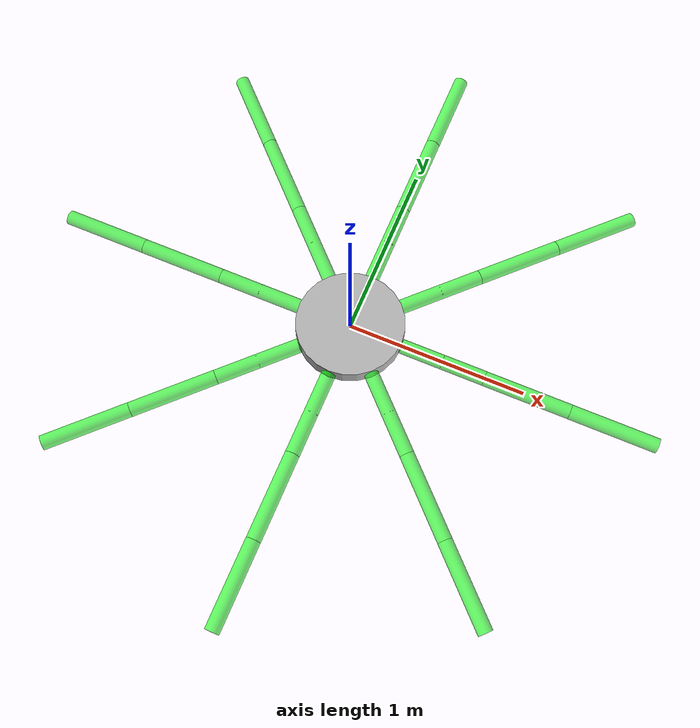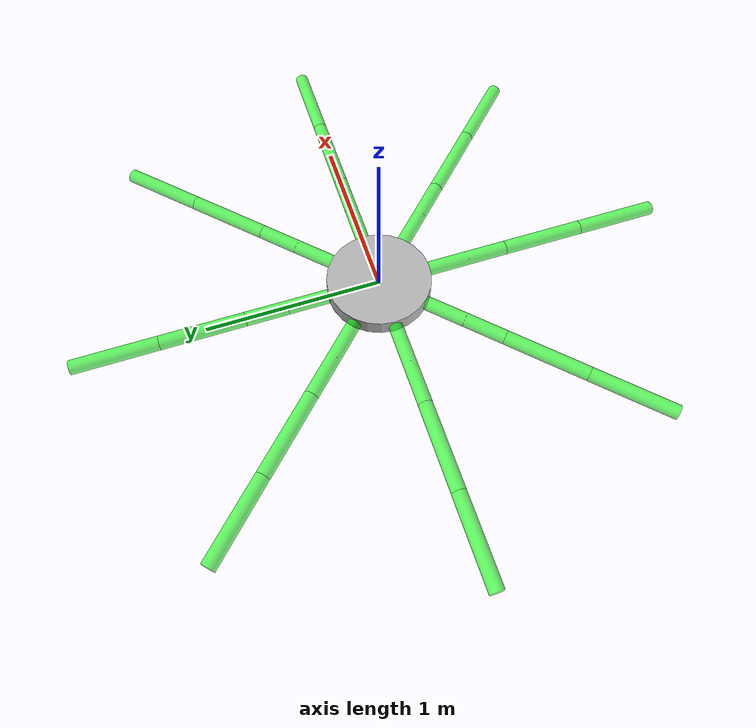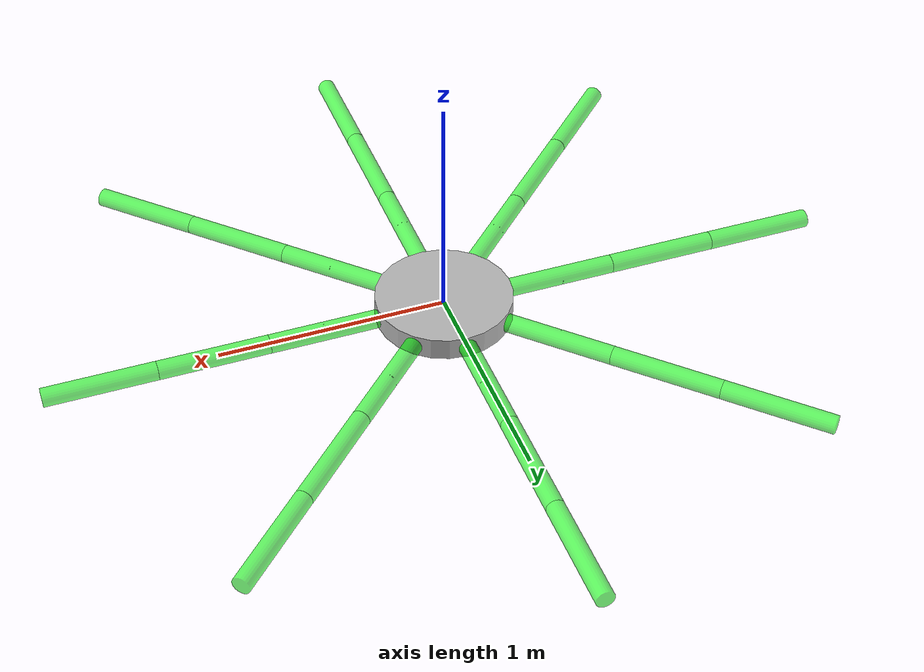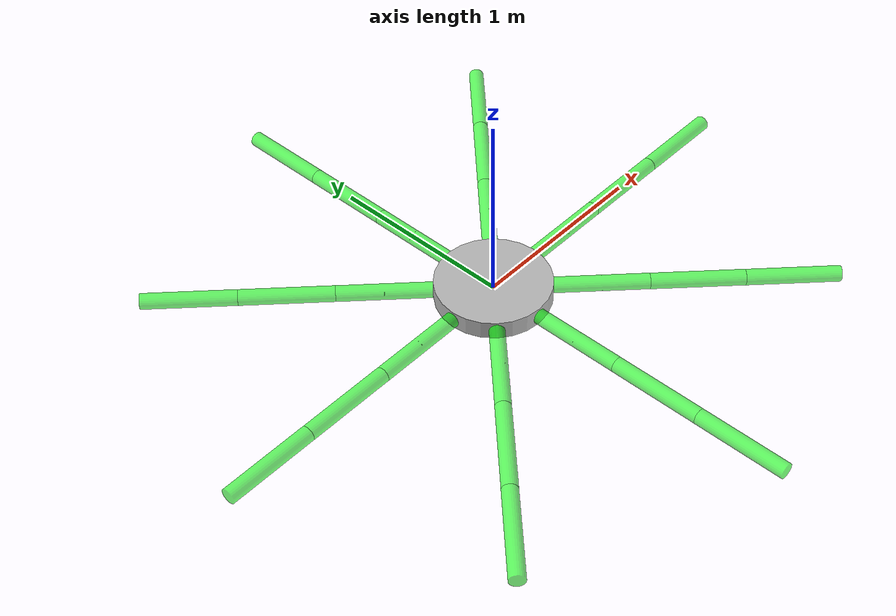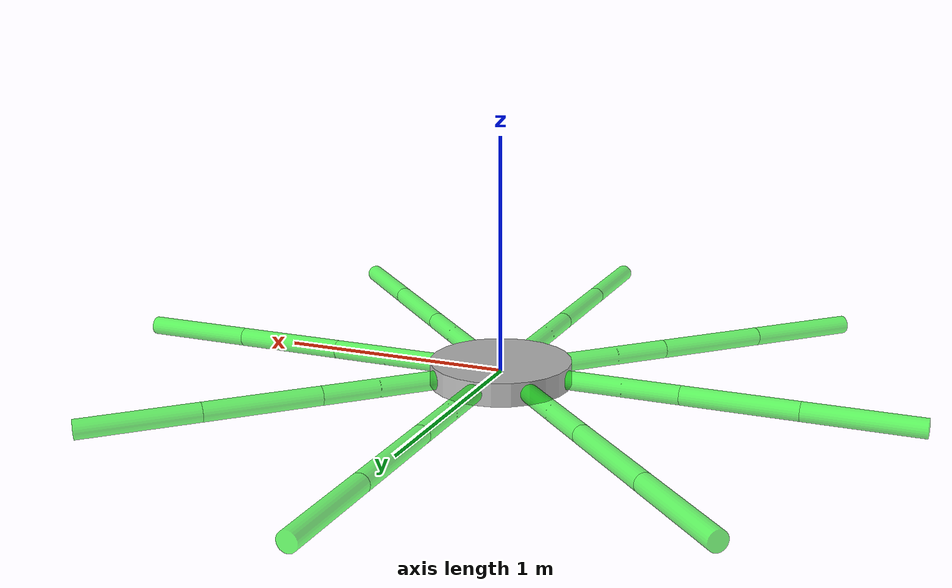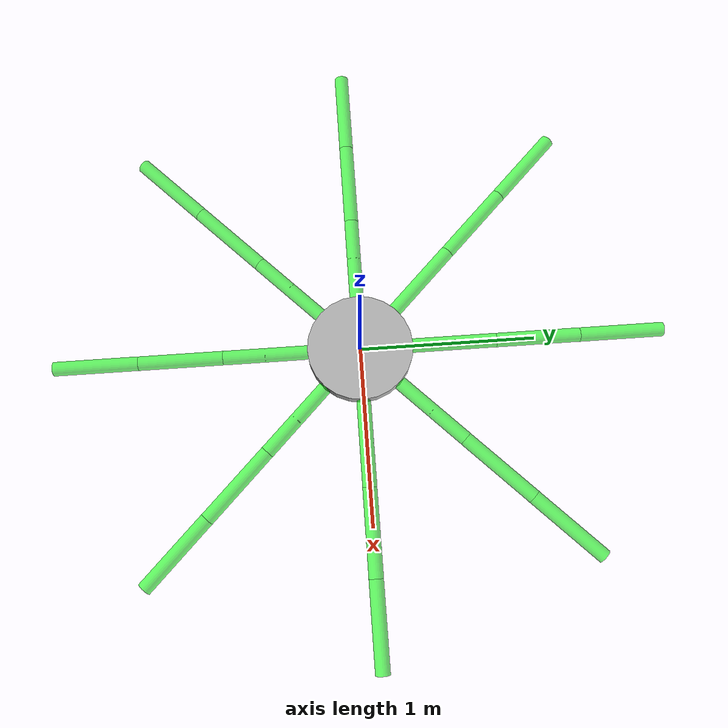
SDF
<?xml version='1.0'?>
<sdf version='1.6'>
<world name='default'>
	<model name="spider">

		<!-- Prevents the robot from falling through the world when visualized in Gazebo. -->
		<joint name="body2world" type="fixed">
			<parent>world</parent>
			<child>body</child>
		</joint>

		<!--TODO: Fix all inertia/mass values!-->

		<!-- Floating base link -->

		<link name="body">
			<pose frame=''>0 0 0 0 0 0</pose>
			<inertial>
				<mass>5</mass>
				<inertia>
					<ixx>5</ixx>
					<ixy>0</ixy>
					<ixz>0</ixz>
					<iyy>5</iyy>
					<iyz>0</iyz>
					<izz>5</izz>
				</inertia>
			</inertial>
			<collision name="body_collision">
				<geometry>
					<cylinder>
						<length>0.1</length>
						<radius>0.3</radius>
					</cylinder>
				</geometry>
			</collision>
			<visual name="body_visual">
				<geometry>
					<cylinder>
						<length>0.1</length>
						<radius>0.3</radius>
					</cylinder>
				</geometry>
			</visual>
		</link>

		<!-- Leg 1 links -->

		<!-- A temporary link, for the temporary solution of testing
		this file using revolute instead of universal joints -->
		<link name="trochanter_1">
			<pose frame=''>0 0 0 0 0 0</pose>
			<inertial>
				<pose frame=''>0 0.54 0 1.57 1.57 0</pose>
				<mass>5</mass>
				<inertia>
					<ixx>5</ixx>
					<ixy>0</ixy>
					<ixz>0</ixz>
					<iyy>5</iyy>
					<iyz>0</iyz>
					<izz>5</izz>
				</inertia>
			</inertial>
			<collision name="trochanter_1_collision">
				<pose frame=''>0 0.54 0 1.57 1.57 0</pose>
				<geometry>
					<cylinder>
						<length>0.001</length>
						<radius>0.04</radius>
					</cylinder>
				</geometry>
			</collision>
			<visual name="trochanter_1_visual">
				<pose frame=''>0 0.54 0 1.57 1.57 0</pose>
				<geometry>
					<cylinder>
						<length>0.001</length>
						<radius>0.04</radius>
					</cylinder>
				</geometry>
				<material>
					<ambient>0 1 0 0.6</ambient>
					<diffuse>0 1 0 0.6</diffuse>
				</material>
			</visual>
		</link>

		<link name="femur_1">
			<pose frame=''>0 0 0 0 0 0</pose>
			<inertial>
				<pose frame=''>0 0.54 0 1.57 1.57 0</pose>
				<mass>5</mass>
				<inertia>
					<ixx>5</ixx>
					<ixy>0</ixy>
					<ixz>0</ixz>
					<iyy>5</iyy>
					<iyz>0</iyz>
					<izz>5</izz>
				</inertia>
			</inertial>
			<collision name="femur_1_collision">
				<pose frame=''>0 0.54 0 1.57 1.57 0</pose>
				<geometry>
					<cylinder>
						<length>0.48</length>
						<radius>0.04</radius>
					</cylinder>
				</geometry>
			</collision>
			<visual name="femur_1_visual">
				<pose frame=''>0 0.54 0 1.57 1.57 0</pose>
				<geometry>
					<cylinder>
						<length>0.48</length>
						<radius>0.04</radius>
					</cylinder>
				</geometry>
				<material>
					<ambient>0 1 0 0.6</ambient>
					<diffuse>0 1 0 0.6</diffuse>
				</material>
			</visual>
		</link>

		<link name="tibia_1">
			<pose frame=''>0 0 0 0 0 0</pose>
			<inertial>
				<pose frame=''>0 1.02 0 1.57 1.57 0</pose>
				<mass>5</mass>
				<inertia>
					<ixx>5</ixx>
					<ixy>0</ixy>
					<ixz>0</ixz>
					<iyy>5</iyy>
					<iyz>0</iyz>
					<izz>5</izz>
				</inertia>
			</inertial>
			<collision name="tibia_1_collision">
				<pose frame=''>0 1.02 0 1.57 1.57 0</pose>
				<geometry>
					<cylinder>
						<length>0.48</length>
						<radius>0.04</radius>
					</cylinder>
				</geometry>
			</collision>
			<visual name="tibia_1_visual">
				<pose frame=''>0 1.02 0 1.57 1.57 0</pose>
				<geometry>
					<cylinder>
						<length>0.48</length>
						<radius>0.04</radius>
					</cylinder>
				</geometry>
				<material>
					<ambient>0 1 0 0.6</ambient>
					<diffuse>0 1 0 0.6</diffuse>
				</material>
			</visual>
		</link>

		<link name="tarsus_1_L1">
			<pose frame=''>0 0 0 0 0 0</pose>
			<inertial>
				<pose frame=''>0 1.5 0 1.57 1.57 0</pose>
				<mass>5</mass>
				<inertia>
					<ixx>5</ixx>
					<ixy>0</ixy>
					<ixz>0</ixz>
					<iyy>5</iyy>
					<iyz>0</iyz>
					<izz>5</izz>
				</inertia>
			</inertial>
			<collision name="tarsus_1_collision">
				<pose frame=''>0 1.5 0 1.57 1.57 0</pose>
				<geometry>
					<cylinder>
						<length>0.48</length>
						<radius>0.04</radius>
					</cylinder>
				</geometry>
			</collision>
			<visual name="tarsus_1_visual">
				<pose frame=''>0 1.5 0 1.57 1.57 0</pose>
				<geometry>
					<cylinder>
						<length>0.48</length>
						<radius>0.04</radius>
					</cylinder>
				</geometry>
				<material>
					<ambient>0 1 0 0.6</ambient>
					<diffuse>0 1 0 0.6</diffuse>
				</material>
			</visual>
		</link>

		<!-- Leg 1 joints -->

		<joint name="hip_1" type="revolute">
			<parent>body</parent>
			<child>trochanter_1</child>
			<pose frame=''>0 0.3 0 0 0 0</pose>
			<axis>
				<xyz>1 0 0</xyz>
				<limit>
					<lower>-0.9162979</lower>
					<upper>0.9162979</upper>
				</limit>
				<use_parent_model_frame>0</use_parent_model_frame>
			</axis>
		</joint>
		<joint name="hip2_1" type="revolute">
			<parent>trochanter_1</parent>
			<child>femur_1</child>
			<pose frame=''>0 0.3001 0 0 0 0</pose>
			<axis>
				<xyz>0 0 1</xyz>
				<limit>
					<lower>-0.610865</lower>
					<upper>0.610865</upper>
				</limit>
				<use_parent_model_frame>0</use_parent_model_frame>
			</axis>
		</joint>

		<joint name="knee_1" type="revolute">
			<parent>femur_1</parent>
			<child>tibia_1</child>
			<pose frame=''>0 0.78001 0 0 0 0</pose>
			<axis>
				<xyz>1 0 0</xyz>
				<limit>
					<lower>-0.349066</lower>
					<upper>2.44346</upper>
				</limit>
			</axis>
		</joint>

		<joint name="ankle_1" type="revolute">
			<parent>tibia_1</parent>
			<child>tarsus_1_L1</child>
			<pose frame=''>0 1.26001 0 0 0 0</pose>
			<axis>
				<xyz>1 0 0</xyz>
				<limit>
					<lower>-1.090831</lower>
					<upper>1.090831</upper>
				</limit>
			</axis>
		</joint>

		<!-- Leg 2 links -->

		<!-- A temporary link, for the temporary solution of testing
		this file using revolute instead of universal joints -->
		<link name="trochanter_2">
			<pose frame=''>0 0 0 0 0 0.785398</pose>
			<inertial>
				<pose frame=''>0 0.54 0 1.57 1.57 0</pose>
				<mass>5</mass>
				<inertia>
					<ixx>5</ixx>
					<ixy>0</ixy>
					<ixz>0</ixz>
					<iyy>5</iyy>
					<iyz>0</iyz>
					<izz>5</izz>
				</inertia>
			</inertial>
			<collision name="trochanter_2_collision">
				<pose frame=''>0 0.54 0 1.57 1.57 0</pose>
				<geometry>
					<cylinder>
						<length>0.001</length>
						<radius>0.04</radius>
					</cylinder>
				</geometry>
			</collision>
			<visual name="trochanter_2_visual">
				<pose frame=''>0 0.54 0 1.57 1.57 0</pose>
				<geometry>
					<cylinder>
						<length>0.001</length>
						<radius>0.04</radius>
					</cylinder>
				</geometry>
				<material>
					<ambient>0 1 0 0.6</ambient>
					<diffuse>0 1 0 0.6</diffuse>
				</material>
			</visual>
		</link>

		<link name="femur_2">
			<pose frame=''>0 0 0 0 0 0.785398</pose>
			<inertial>
				<pose frame=''>0 0.54 0 1.57 1.57 0</pose>
				<mass>5</mass>
				<inertia>
					<ixx>5</ixx>
					<ixy>0</ixy>
					<ixz>0</ixz>
					<iyy>5</iyy>
					<iyz>0</iyz>
					<izz>5</izz>
				</inertia>
			</inertial>
			<collision name="femur_2_collision">
				<pose frame=''>0 0.54 0 1.57 1.57 0</pose>
				<geometry>
					<cylinder>
						<length>0.48</length>
						<radius>0.04</radius>
					</cylinder>
				</geometry>
			</collision>
			<visual name="femur_2_visual">
				<pose frame=''>0 0.54 0 1.57 1.57 0</pose>
				<geometry>
					<cylinder>
						<length>0.48</length>
						<radius>0.04</radius>
					</cylinder>
				</geometry>
				<material>
					<ambient>0 1 0 0.6</ambient>
					<diffuse>0 1 0 0.6</diffuse>
				</material>
			</visual>
		</link>

		<link name="tibia_2">
			<pose frame=''>0 0 0 0 0 0.785398</pose>
			<inertial>
				<pose frame=''>0 1.02 0 1.57 1.57 0</pose>
				<mass>5</mass>
				<inertia>
					<ixx>5</ixx>
					<ixy>0</ixy>
					<ixz>0</ixz>
					<iyy>5</iyy>
					<iyz>0</iyz>
					<izz>5</izz>
				</inertia>
			</inertial>
			<collision name="tibia_2_collision">
				<pose frame=''>0 1.02 0 1.57 1.57 0</pose>
				<geometry>
					<cylinder>
						<length>0.48</length>
						<radius>0.04</radius>
					</cylinder>
				</geometry>
			</collision>
			<visual name="tibia_2_visual">
				<pose frame=''>0 1.02 0 1.57 1.57 0</pose>
				<geometry>
					<cylinder>
						<length>0.48</length>
						<radius>0.04</radius>
					</cylinder>
				</geometry>
				<material>
					<ambient>0 1 0 0.6</ambient>
					<diffuse>0 1 0 0.6</diffuse>
				</material>
			</visual>
		</link>

		<link name="tarsus_2_L2">
			<pose frame=''>0 0 0 0 0 0.785398</pose>
			<inertial>
				<pose frame=''>0 1.5 0 1.57 1.57 0</pose>
				<mass>5</mass>
				<inertia>
					<ixx>5</ixx>
					<ixy>0</ixy>
					<ixz>0</ixz>
					<iyy>5</iyy>
					<iyz>0</iyz>
					<izz>5</izz>
				</inertia>
			</inertial>
			<collision name="tarsus_2_collision">
				<pose frame=''>0 1.5 0 1.57 1.57 0</pose>
				<geometry>
					<cylinder>
						<length>0.48</length>
						<radius>0.04</radius>
					</cylinder>
				</geometry>
			</collision>
			<visual name="tarsus_2_visual">
				<pose frame=''>0 1.5 0 1.57 1.57 0</pose>
				<geometry>
					<cylinder>
						<length>0.48</length>
						<radius>0.04</radius>
					</cylinder>
				</geometry>
				<material>
					<ambient>0 1 0 0.6</ambient>
					<diffuse>0 1 0 0.6</diffuse>
				</material>
			</visual>
		</link>

		<!-- Leg 2 joints -->

		<joint name="hip_2" type="revolute">
			<parent>body</parent>
			<child>trochanter_2</child>
			<pose frame=''>0 0.3 0 0 0 0</pose>
			<axis>
				<xyz>1 0 0</xyz>
				<limit>
					<lower>-0.9162979</lower>
					<upper>0.9162979</upper>
				</limit>
				<use_parent_model_frame>0</use_parent_model_frame>
			</axis>
		</joint>
		<joint name="hip2_2" type="revolute">
			<parent>trochanter_2</parent>
			<child>femur_2</child>
			<pose frame=''>0 0.3001 0 0 0 0</pose>
			<axis>
				<xyz>0 0 1</xyz>
				<limit>
					<lower>-0.610865</lower>
					<upper>0.610865</upper>
				</limit>
				<use_parent_model_frame>0</use_parent_model_frame>
			</axis>
		</joint>

		<joint name="knee_2" type="revolute">
			<parent>femur_2</parent>
			<child>tibia_2</child>
			<pose frame=''>0 0.78001 0 0 0 0</pose>
			<axis>
				<xyz>1 0 0</xyz>
				<limit>
					<lower>-0.349066</lower>
					<upper>2.44346</upper>
				</limit>
			</axis>
		</joint>

		<joint name="ankle_2" type="revolute">
			<parent>tibia_2</parent>
			<child>tarsus_2_L2</child>
			<pose frame=''>0 1.26001 0 0 0 0</pose>
			<axis>
				<xyz>1 0 0</xyz>
				<limit>
					<lower>-1.090831</lower>
					<upper>1.090831</upper>
				</limit>
			</axis>
		</joint>

		<!-- Leg 3 links -->

		<!-- A temporary link, for the temporary solution of testing
		this file using revolute instead of universal joints -->
		<link name="trochanter_3">
			<pose frame=''>0 0 0 0 0 1.570796</pose>
			<inertial>
				<pose frame=''>0 0.54 0 1.57 1.57 0</pose>
				<mass>5</mass>
				<inertia>
					<ixx>5</ixx>
					<ixy>0</ixy>
					<ixz>0</ixz>
					<iyy>5</iyy>
					<iyz>0</iyz>
					<izz>5</izz>
				</inertia>
			</inertial>
			<collision name="trochanter_3_collision">
				<pose frame=''>0 0.54 0 1.57 1.57 0</pose>
				<geometry>
					<cylinder>
						<length>0.001</length>
						<radius>0.04</radius>
					</cylinder>
				</geometry>
			</collision>
			<visual name="trochanter_3_visual">
				<pose frame=''>0 0.54 0 1.57 1.57 0</pose>
				<geometry>
					<cylinder>
						<length>0.001</length>
						<radius>0.04</radius>
					</cylinder>
				</geometry>
				<material>
					<ambient>0 1 0 0.6</ambient>
					<diffuse>0 1 0 0.6</diffuse>
				</material>
			</visual>
		</link>

		<link name="femur_3">
			<pose frame=''>0 0 0 0 0 1.570796</pose>
			<inertial>
				<pose frame=''>0 0.54 0 1.57 1.57 0</pose>
				<mass>5</mass>
				<inertia>
					<ixx>5</ixx>
					<ixy>0</ixy>
					<ixz>0</ixz>
					<iyy>5</iyy>
					<iyz>0</iyz>
					<izz>5</izz>
				</inertia>
			</inertial>
			<collision name="femur_3_collision">
				<pose frame=''>0 0.54 0 1.57 1.57 0</pose>
				<geometry>
					<cylinder>
						<length>0.48</length>
						<radius>0.04</radius>
					</cylinder>
				</geometry>
			</collision>
			<visual name="femur_3_visual">
				<pose frame=''>0 0.54 0 1.57 1.57 0</pose>
				<geometry>
					<cylinder>
						<length>0.48</length>
						<radius>0.04</radius>
					</cylinder>
				</geometry>
				<material>
					<ambient>0 1 0 0.6</ambient>
					<diffuse>0 1 0 0.6</diffuse>
				</material>
			</visual>
		</link>

		<link name="tibia_3">
			<pose frame=''>0 0 0 0 0 1.570796</pose>
			<inertial>
				<pose frame=''>0 1.02 0 1.57 1.57 0</pose>
				<mass>5</mass>
				<inertia>
					<ixx>5</ixx>
					<ixy>0</ixy>
					<ixz>0</ixz>
					<iyy>5</iyy>
					<iyz>0</iyz>
					<izz>5</izz>
				</inertia>
			</inertial>
			<collision name="tibia_3_collision">
				<pose frame=''>0 1.02 0 1.57 1.57 0</pose>
				<geometry>
					<cylinder>
						<length>0.48</length>
						<radius>0.04</radius>
					</cylinder>
				</geometry>
			</collision>
			<visual name="tibia_3_visual">
				<pose frame=''>0 1.02 0 1.57 1.57 0</pose>
				<geometry>
					<cylinder>
						<length>0.48</length>
						<radius>0.04</radius>
					</cylinder>
				</geometry>
				<material>
					<ambient>0 1 0 0.6</ambient>
					<diffuse>0 1 0 0.6</diffuse>
				</material>
			</visual>
		</link>

		<link name="tarsus_3_L3">
			<pose frame=''>0 0 0 0 0 1.570796</pose>
			<inertial>
				<pose frame=''>0 1.5 0 1.57 1.57 0</pose>
				<mass>5</mass>
				<inertia>
					<ixx>5</ixx>
					<ixy>0</ixy>
					<ixz>0</ixz>
					<iyy>5</iyy>
					<iyz>0</iyz>
					<izz>5</izz>
				</inertia>
			</inertial>
			<collision name="tarsus_3_collision">
				<pose frame=''>0 1.5 0 1.57 1.57 0</pose>
				<geometry>
					<cylinder>
						<length>0.48</length>
						<radius>0.04</radius>
					</cylinder>
				</geometry>
			</collision>
			<visual name="tarsus_3_visual">
				<pose frame=''>0 1.5 0 1.57 1.57 0</pose>
				<geometry>
					<cylinder>
						<length>0.48</length>
						<radius>0.04</radius>
					</cylinder>
				</geometry>
				<material>
					<ambient>0 1 0 0.6</ambient>
					<diffuse>0 1 0 0.6</diffuse>
				</material>
			</visual>
		</link>

		<!-- Leg 3 joints -->

		<joint name="hip_3" type="revolute">
			<parent>body</parent>
			<child>trochanter_3</child>
			<pose frame=''>0 0.3 0 0 0 0</pose>
			<axis>
				<xyz>1 0 0</xyz>
				<limit>
					<lower>-0.9162979</lower>
					<upper>0.9162979</upper>
				</limit>
				<use_parent_model_frame>0</use_parent_model_frame>
			</axis>
		</joint>
		<joint name="hip2_3" type="revolute">
			<parent>trochanter_3</parent>
			<child>femur_3</child>
			<pose frame=''>0 0.3001 0 0 0 0</pose>
			<axis>
				<xyz>0 0 1</xyz>
				<limit>
					<lower>-0.610865</lower>
					<upper>0.610865</upper>
				</limit>
				<use_parent_model_frame>0</use_parent_model_frame>
			</axis>
		</joint>

		<joint name="knee_3" type="revolute">
			<parent>femur_3</parent>
			<child>tibia_3</child>
			<pose frame=''>0 0.78001 0 0 0 0</pose>
			<axis>
				<xyz>1 0 0</xyz>
				<limit>
					<lower>-0.349066</lower>
					<upper>2.44346</upper>
				</limit>
			</axis>
		</joint>

		<joint name="ankle_3" type="revolute">
			<parent>tibia_3</parent>
			<child>tarsus_3_L3</child>
			<pose frame=''>0 1.26001 0 0 0 0</pose>
			<axis>
				<xyz>1 0 0</xyz>
				<limit>
					<lower>-1.090831</lower>
					<upper>1.090831</upper>
				</limit>
			</axis>
		</joint>

		<!-- Leg 4 links -->

		<!-- A temporary link, for the temporary solution of testing
		this file using revolute instead of universal joints -->
		<link name="trochanter_4">
			<pose frame=''>0 0 0 0 0 2.356194</pose>
			<inertial>
				<pose frame=''>0 0.54 0 1.57 1.57 0</pose>
				<mass>5</mass>
				<inertia>
					<ixx>5</ixx>
					<ixy>0</ixy>
					<ixz>0</ixz>
					<iyy>5</iyy>
					<iyz>0</iyz>
					<izz>5</izz>
				</inertia>
			</inertial>
			<collision name="trochanter_4_collision">
				<pose frame=''>0 0.54 0 1.57 1.57 0</pose>
				<geometry>
					<cylinder>
						<length>0.001</length>
						<radius>0.04</radius>
					</cylinder>
				</geometry>
			</collision>
			<visual name="trochanter_4_visual">
				<pose frame=''>0 0.54 0 1.57 1.57 0</pose>
				<geometry>
					<cylinder>
						<length>0.001</length>
						<radius>0.04</radius>
					</cylinder>
				</geometry>
				<material>
					<ambient>0 1 0 0.6</ambient>
					<diffuse>0 1 0 0.6</diffuse>
				</material>
			</visual>
		</link>

		<link name="femur_4">
			<pose frame=''>0 0 0 0 0 2.356194</pose>
			<inertial>
				<pose frame=''>0 0.54 0 1.57 1.57 0</pose>
				<mass>5</mass>
				<inertia>
					<ixx>5</ixx>
					<ixy>0</ixy>
					<ixz>0</ixz>
					<iyy>5</iyy>
					<iyz>0</iyz>
					<izz>5</izz>
				</inertia>
			</inertial>
			<collision name="femur_4_collision">
				<pose frame=''>0 0.54 0 1.57 1.57 0</pose>
				<geometry>
					<cylinder>
						<length>0.48</length>
						<radius>0.04</radius>
					</cylinder>
				</geometry>
			</collision>
			<visual name="femur_4_visual">
				<pose frame=''>0 0.54 0 1.57 1.57 0</pose>
				<geometry>
					<cylinder>
						<length>0.48</length>
						<radius>0.04</radius>
					</cylinder>
				</geometry>
				<material>
					<ambient>0 1 0 0.6</ambient>
					<diffuse>0 1 0 0.6</diffuse>
				</material>
			</visual>
		</link>

		<link name="tibia_4">
			<pose frame=''>0 0 0 0 0 2.356194</pose>
			<inertial>
				<pose frame=''>0 1.02 0 1.57 1.57 0</pose>
				<mass>5</mass>
				<inertia>
					<ixx>5</ixx>
					<ixy>0</ixy>
					<ixz>0</ixz>
					<iyy>5</iyy>
					<iyz>0</iyz>
					<izz>5</izz>
				</inertia>
			</inertial>
			<collision name="tibia_4_collision">
				<pose frame=''>0 1.02 0 1.57 1.57 0</pose>
				<geometry>
					<cylinder>
						<length>0.48</length>
						<radius>0.04</radius>
					</cylinder>
				</geometry>
			</collision>
			<visual name="tibia_4_visual">
				<pose frame=''>0 1.02 0 1.57 1.57 0</pose>
				<geometry>
					<cylinder>
						<length>0.48</length>
						<radius>0.04</radius>
					</cylinder>
				</geometry>
				<material>
					<ambient>0 1 0 0.6</ambient>
					<diffuse>0 1 0 0.6</diffuse>
				</material>
			</visual>
		</link>

		<link name="tarsus_4_L4">
			<pose frame=''>0 0 0 0 0 2.356194</pose>
			<inertial>
				<pose frame=''>0 1.5 0 1.57 1.57 0</pose>
				<mass>5</mass>
				<inertia>
					<ixx>5</ixx>
					<ixy>0</ixy>
					<ixz>0</ixz>
					<iyy>5</iyy>
					<iyz>0</iyz>
					<izz>5</izz>
				</inertia>
			</inertial>
			<collision name="tarsus_4_collision">
				<pose frame=''>0 1.5 0 1.57 1.57 0</pose>
				<geometry>
					<cylinder>
						<length>0.48</length>
						<radius>0.04</radius>
					</cylinder>
				</geometry>
			</collision>
			<visual name="tarsus_4_visual">
				<pose frame=''>0 1.5 0 1.57 1.57 0</pose>
				<geometry>
					<cylinder>
						<length>0.48</length>
						<radius>0.04</radius>
					</cylinder>
				</geometry>
				<material>
					<ambient>0 1 0 0.6</ambient>
					<diffuse>0 1 0 0.6</diffuse>
				</material>
			</visual>
		</link>

		<!-- Leg 4 joints -->

		<joint name="hip_4" type="revolute">
			<parent>body</parent>
			<child>trochanter_4</child>
			<pose frame=''>0 0.3 0 0 0 0</pose>
			<axis>
				<xyz>1 0 0</xyz>
				<limit>
					<lower>-0.9162979</lower>
					<upper>0.9162979</upper>
				</limit>
				<use_parent_model_frame>0</use_parent_model_frame>
			</axis>
		</joint>
		<joint name="hip2_4" type="revolute">
			<parent>trochanter_4</parent>
			<child>femur_4</child>
			<pose frame=''>0 0.3001 0 0 0 0</pose>
			<axis>
				<xyz>0 0 1</xyz>
				<limit>
					<lower>-0.610865</lower>
					<upper>0.610865</upper>
				</limit>
				<use_parent_model_frame>0</use_parent_model_frame>
			</axis>
		</joint>

		<joint name="knee_4" type="revolute">
			<parent>femur_4</parent>
			<child>tibia_4</child>
			<pose frame=''>0 0.78001 0 0 0 0</pose>
			<axis>
				<xyz>1 0 0</xyz>
				<limit>
					<lower>-0.349066</lower>
					<upper>2.44346</upper>
				</limit>
			</axis>
		</joint>

		<joint name="ankle_4" type="revolute">
			<parent>tibia_4</parent>
			<child>tarsus_4_L4</child>
			<pose frame=''>0 1.26001 0 0 0 0</pose>
			<axis>
				<xyz>1 0 0</xyz>
				<limit>
					<lower>-1.090831</lower>
					<upper>1.090831</upper>
				</limit>
			</axis>
		</joint>

		<!-- Leg 5 links -->

		<!-- A temporary link, for the temporary solution of testing
		this file using revolute instead of universal joints -->
		<link name="trochanter_5">
			<pose frame=''>0 0 0 0 0 3.141592</pose>
			<inertial>
				<pose frame=''>0 0.54 0 1.57 1.57 0</pose>
				<mass>5</mass>
				<inertia>
					<ixx>5</ixx>
					<ixy>0</ixy>
					<ixz>0</ixz>
					<iyy>5</iyy>
					<iyz>0</iyz>
					<izz>5</izz>
				</inertia>
			</inertial>
			<collision name="trochanter_5_collision">
				<pose frame=''>0 0.54 0 1.57 1.57 0</pose>
				<geometry>
					<cylinder>
						<length>0.001</length>
						<radius>0.04</radius>
					</cylinder>
				</geometry>
			</collision>
			<visual name="trochanter_5_visual">
				<pose frame=''>0 0.54 0 1.57 1.57 0</pose>
				<geometry>
					<cylinder>
						<length>0.001</length>
						<radius>0.04</radius>
					</cylinder>
				</geometry>
				<material>
					<ambient>0 1 0 0.6</ambient>
					<diffuse>0 1 0 0.6</diffuse>
				</material>
			</visual>
		</link>

		<link name="femur_5">
			<pose frame=''>0 0 0 0 0 3.141592</pose>
			<inertial>
				<pose frame=''>0 0.54 0 1.57 1.57 0</pose>
				<mass>5</mass>
				<inertia>
					<ixx>5</ixx>
					<ixy>0</ixy>
					<ixz>0</ixz>
					<iyy>5</iyy>
					<iyz>0</iyz>
					<izz>5</izz>
				</inertia>
			</inertial>
			<collision name="femur_5_collision">
				<pose frame=''>0 0.54 0 1.57 1.57 0</pose>
				<geometry>
					<cylinder>
						<length>0.48</length>
						<radius>0.04</radius>
					</cylinder>
				</geometry>
			</collision>
			<visual name="femur_5_visual">
				<pose frame=''>0 0.54 0 1.57 1.57 0</pose>
				<geometry>
					<cylinder>
						<length>0.48</length>
						<radius>0.04</radius>
					</cylinder>
				</geometry>
				<material>
					<ambient>0 1 0 0.6</ambient>
					<diffuse>0 1 0 0.6</diffuse>
				</material>
			</visual>
		</link>

		<link name="tibia_5">
			<pose frame=''>0 0 0 0 0 3.141592</pose>
			<inertial>
				<pose frame=''>0 1.02 0 1.57 1.57 0</pose>
				<mass>5</mass>
				<inertia>
					<ixx>5</ixx>
					<ixy>0</ixy>
					<ixz>0</ixz>
					<iyy>5</iyy>
					<iyz>0</iyz>
					<izz>5</izz>
				</inertia>
			</inertial>
			<collision name="tibia_5_collision">
				<pose frame=''>0 1.02 0 1.57 1.57 0</pose>
				<geometry>
					<cylinder>
						<length>0.48</length>
						<radius>0.04</radius>
					</cylinder>
				</geometry>
			</collision>
			<visual name="tibia_5_visual">
				<pose frame=''>0 1.02 0 1.57 1.57 0</pose>
				<geometry>
					<cylinder>
						<length>0.48</length>
						<radius>0.04</radius>
					</cylinder>
				</geometry>
				<material>
					<ambient>0 1 0 0.6</ambient>
					<diffuse>0 1 0 0.6</diffuse>
				</material>
			</visual>
		</link>

		<link name="tarsus_5_R4">
			<pose frame=''>0 0 0 0 0 3.141592</pose>
			<inertial>
				<pose frame=''>0 1.5 0 1.57 1.57 0</pose>
				<mass>5</mass>
				<inertia>
					<ixx>5</ixx>
					<ixy>0</ixy>
					<ixz>0</ixz>
					<iyy>5</iyy>
					<iyz>0</iyz>
					<izz>5</izz>
				</inertia>
			</inertial>
			<collision name="tarsus_5_collision">
				<pose frame=''>0 1.5 0 1.57 1.57 0</pose>
				<geometry>
					<cylinder>
						<length>0.48</length>
						<radius>0.04</radius>
					</cylinder>
				</geometry>
			</collision>
			<visual name="tarsus_5_visual">
				<pose frame=''>0 1.5 0 1.57 1.57 0</pose>
				<geometry>
					<cylinder>
						<length>0.48</length>
						<radius>0.04</radius>
					</cylinder>
				</geometry>
				<material>
					<ambient>0 1 0 0.6</ambient>
					<diffuse>0 1 0 0.6</diffuse>
				</material>
			</visual>
		</link>

		<!-- Leg 5 joints -->

		<joint name="hip_5" type="revolute">
			<parent>body</parent>
			<child>trochanter_5</child>
			<pose frame=''>0 0.3 0 0 0 0</pose>
			<axis>
				<xyz>1 0 0</xyz>
				<limit>
					<lower>-0.9162979</lower>
					<upper>0.9162979</upper>
				</limit>
				<use_parent_model_frame>0</use_parent_model_frame>
			</axis>
		</joint>
		<joint name="hip2_5" type="revolute">
			<parent>trochanter_5</parent>
			<child>femur_5</child>
			<pose frame=''>0 0.3001 0 0 0 0</pose>
			<axis>
				<xyz>0 0 1</xyz>
				<limit>
					<lower>-0.610865</lower>
					<upper>0.610865</upper>
				</limit>
				<use_parent_model_frame>0</use_parent_model_frame>
			</axis>
		</joint>

		<joint name="knee_5" type="revolute">
			<parent>femur_5</parent>
			<child>tibia_5</child>
			<pose frame=''>0 0.78001 0 0 0 0</pose>
			<axis>
				<xyz>1 0 0</xyz>
				<limit>
					<lower>-0.349066</lower>
					<upper>2.44346</upper>
				</limit>
			</axis>
		</joint>

		<joint name="ankle_5" type="revolute">
			<parent>tibia_5</parent>
			<child>tarsus_5_R4</child>
			<pose frame=''>0 1.26001 0 0 0 0</pose>
			<axis>
				<xyz>1 0 0</xyz>
				<limit>
					<lower>-1.090831</lower>
					<upper>1.090831</upper>
				</limit>
			</axis>
		</joint>

		<!-- Leg 6 links -->

		<!-- A temporary link, for the temporary solution of testing
		this file using revolute instead of universal joints -->
		<link name="trochanter_6">
			<pose frame=''>0 0 0 0 0 3.92699</pose>
			<inertial>
				<pose frame=''>0 0.54 0 1.57 1.57 0</pose>
				<mass>5</mass>
				<inertia>
					<ixx>5</ixx>
					<ixy>0</ixy>
					<ixz>0</ixz>
					<iyy>5</iyy>
					<iyz>0</iyz>
					<izz>5</izz>
				</inertia>
			</inertial>
			<collision name="trochanter_6_collision">
				<pose frame=''>0 0.54 0 1.57 1.57 0</pose>
				<geometry>
					<cylinder>
						<length>0.001</length>
						<radius>0.04</radius>
					</cylinder>
				</geometry>
			</collision>
			<visual name="trochanter_6_visual">
				<pose frame=''>0 0.54 0 1.57 1.57 0</pose>
				<geometry>
					<cylinder>
						<length>0.001</length>
						<radius>0.04</radius>
					</cylinder>
				</geometry>
				<material>
					<ambient>0 1 0 0.6</ambient>
					<diffuse>0 1 0 0.6</diffuse>
				</material>
			</visual>
		</link>

		<link name="femur_6">
			<pose frame=''>0 0 0 0 0 3.92699</pose>
			<inertial>
				<pose frame=''>0 0.54 0 1.57 1.57 0</pose>
				<mass>5</mass>
				<inertia>
					<ixx>5</ixx>
					<ixy>0</ixy>
					<ixz>0</ixz>
					<iyy>5</iyy>
					<iyz>0</iyz>
					<izz>5</izz>
				</inertia>
			</inertial>
			<collision name="femur_6_collision">
				<pose frame=''>0 0.54 0 1.57 1.57 0</pose>
				<geometry>
					<cylinder>
						<length>0.48</length>
						<radius>0.04</radius>
					</cylinder>
				</geometry>
			</collision>
			<visual name="femur_6_visual">
				<pose frame=''>0 0.54 0 1.57 1.57 0</pose>
				<geometry>
					<cylinder>
						<length>0.48</length>
						<radius>0.04</radius>
					</cylinder>
				</geometry>
				<material>
					<ambient>0 1 0 0.6</ambient>
					<diffuse>0 1 0 0.6</diffuse>
				</material>
			</visual>
		</link>

		<link name="tibia_6">
			<pose frame=''>0 0 0 0 0 3.92699</pose>
			<inertial>
				<pose frame=''>0 1.02 0 1.57 1.57 0</pose>
				<mass>5</mass>
				<inertia>
					<ixx>5</ixx>
					<ixy>0</ixy>
					<ixz>0</ixz>
					<iyy>5</iyy>
					<iyz>0</iyz>
					<izz>5</izz>
				</inertia>
			</inertial>
			<collision name="tibia_6_collision">
				<pose frame=''>0 1.02 0 1.57 1.57 0</pose>
				<geometry>
					<cylinder>
						<length>0.48</length>
						<radius>0.04</radius>
					</cylinder>
				</geometry>
			</collision>
			<visual name="tibia_6_visual">
				<pose frame=''>0 1.02 0 1.57 1.57 0</pose>
				<geometry>
					<cylinder>
						<length>0.48</length>
						<radius>0.04</radius>
					</cylinder>
				</geometry>
				<material>
					<ambient>0 1 0 0.6</ambient>
					<diffuse>0 1 0 0.6</diffuse>
				</material>
			</visual>
		</link>

		<link name="tarsus_6_R3">
			<pose frame=''>0 0 0 0 0 3.92699</pose>
			<inertial>
				<pose frame=''>0 1.5 0 1.57 1.57 0</pose>
				<mass>5</mass>
				<inertia>
					<ixx>5</ixx>
					<ixy>0</ixy>
					<ixz>0</ixz>
					<iyy>5</iyy>
					<iyz>0</iyz>
					<izz>5</izz>
				</inertia>
			</inertial>
			<collision name="tarsus_6_collision">
				<pose frame=''>0 1.5 0 1.57 1.57 0</pose>
				<geometry>
					<cylinder>
						<length>0.48</length>
						<radius>0.04</radius>
					</cylinder>
				</geometry>
			</collision>
			<visual name="tarsus_6_visual">
				<pose frame=''>0 1.5 0 1.57 1.57 0</pose>
				<geometry>
					<cylinder>
						<length>0.48</length>
						<radius>0.04</radius>
					</cylinder>
				</geometry>
				<material>
					<ambient>0 1 0 0.6</ambient>
					<diffuse>0 1 0 0.6</diffuse>
				</material>
			</visual>
		</link>

		<!-- Leg 6 joints -->

		<joint name="hip_6" type="revolute">
			<parent>body</parent>
			<child>trochanter_6</child>
			<pose frame=''>0 0.3 0 0 0 0</pose>
			<axis>
				<xyz>1 0 0</xyz>
				<limit>
					<lower>-0.9162979</lower>
					<upper>0.9162979</upper>
				</limit>
				<use_parent_model_frame>0</use_parent_model_frame>
			</axis>
		</joint>
		<joint name="hip2_6" type="revolute">
			<parent>trochanter_6</parent>
			<child>femur_6</child>
			<pose frame=''>0 0.3001 0 0 0 0</pose>
			<axis>
				<xyz>0 0 1</xyz>
				<limit>
					<lower>-0.610865</lower>
					<upper>0.610865</upper>
				</limit>
				<use_parent_model_frame>0</use_parent_model_frame>
			</axis>
		</joint>

		<joint name="knee_6" type="revolute">
			<parent>femur_6</parent>
			<child>tibia_6</child>
			<pose frame=''>0 0.78001 0 0 0 0</pose>
			<axis>
				<xyz>1 0 0</xyz>
				<limit>
					<lower>-0.349066</lower>
					<upper>2.44346</upper>
				</limit>
			</axis>
		</joint>

		<joint name="ankle_6" type="revolute">
			<parent>tibia_6</parent>
			<child>tarsus_6_R3</child>
			<pose frame=''>0 1.26001 0 0 0 0</pose>
			<axis>
				<xyz>1 0 0</xyz>
				<limit>
					<lower>-1.090831</lower>
					<upper>1.090831</upper>
				</limit>
			</axis>
		</joint>

		<!-- Leg 7 links -->

		<!-- A temporary link, for the temporary solution of testing
		this file using revolute instead of universal joints -->
		<link name="trochanter_7">
			<pose frame=''>0 0 0 0 0 4.712388</pose>
			<inertial>
				<pose frame=''>0 0.54 0 1.57 1.57 0</pose>
				<mass>5</mass>
				<inertia>
					<ixx>5</ixx>
					<ixy>0</ixy>
					<ixz>0</ixz>
					<iyy>5</iyy>
					<iyz>0</iyz>
					<izz>5</izz>
				</inertia>
			</inertial>
			<collision name="trochanter_7_collision">
				<pose frame=''>0 0.54 0 1.57 1.57 0</pose>
				<geometry>
					<cylinder>
						<length>0.001</length>
						<radius>0.04</radius>
					</cylinder>
				</geometry>
			</collision>
			<visual name="trochanter_7_visual">
				<pose frame=''>0 0.54 0 1.57 1.57 0</pose>
				<geometry>
					<cylinder>
						<length>0.001</length>
						<radius>0.04</radius>
					</cylinder>
				</geometry>
				<material>
					<ambient>0 1 0 0.6</ambient>
					<diffuse>0 1 0 0.6</diffuse>
				</material>
			</visual>
		</link>

		<link name="femur_7">
			<pose frame=''>0 0 0 0 0 4.712388</pose>
			<inertial>
				<pose frame=''>0 0.54 0 1.57 1.57 0</pose>
				<mass>5</mass>
				<inertia>
					<ixx>5</ixx>
					<ixy>0</ixy>
					<ixz>0</ixz>
					<iyy>5</iyy>
					<iyz>0</iyz>
					<izz>5</izz>
				</inertia>
			</inertial>
			<collision name="femur_7_collision">
				<pose frame=''>0 0.54 0 1.57 1.57 0</pose>
				<geometry>
					<cylinder>
						<length>0.48</length>
						<radius>0.04</radius>
					</cylinder>
				</geometry>
			</collision>
			<visual name="femur_7_visual">
				<pose frame=''>0 0.54 0 1.57 1.57 0</pose>
				<geometry>
					<cylinder>
						<length>0.48</length>
						<radius>0.04</radius>
					</cylinder>
				</geometry>
				<material>
					<ambient>0 1 0 0.6</ambient>
					<diffuse>0 1 0 0.6</diffuse>
				</material>
			</visual>
		</link>

		<link name="tibia_7">
			<pose frame=''>0 0 0 0 0 4.712388</pose>
			<inertial>
				<pose frame=''>0 1.02 0 1.57 1.57 0</pose>
				<mass>5</mass>
				<inertia>
					<ixx>5</ixx>
					<ixy>0</ixy>
					<ixz>0</ixz>
					<iyy>5</iyy>
					<iyz>0</iyz>
					<izz>5</izz>
				</inertia>
			</inertial>
			<collision name="tibia_7_collision">
				<pose frame=''>0 1.02 0 1.57 1.57 0</pose>
				<geometry>
					<cylinder>
						<length>0.48</length>
						<radius>0.04</radius>
					</cylinder>
				</geometry>
			</collision>
			<visual name="tibia_7_visual">
				<pose frame=''>0 1.02 0 1.57 1.57 0</pose>
				<geometry>
					<cylinder>
						<length>0.48</length>
						<radius>0.04</radius>
					</cylinder>
				</geometry>
				<material>
					<ambient>0 1 0 0.6</ambient>
					<diffuse>0 1 0 0.6</diffuse>
				</material>
			</visual>
		</link>

		<link name="tarsus_7_R2">
			<pose frame=''>0 0 0 0 0 4.712388</pose>
			<inertial>
				<pose frame=''>0 1.5 0 1.57 1.57 0</pose>
				<mass>5</mass>
				<inertia>
					<ixx>5</ixx>
					<ixy>0</ixy>
					<ixz>0</ixz>
					<iyy>5</iyy>
					<iyz>0</iyz>
					<izz>5</izz>
				</inertia>
			</inertial>
			<collision name="tarsus_7_collision">
				<pose frame=''>0 1.5 0 1.57 1.57 0</pose>
				<geometry>
					<cylinder>
						<length>0.48</length>
						<radius>0.04</radius>
					</cylinder>
				</geometry>
			</collision>
			<visual name="tarsus_7_visual">
				<pose frame=''>0 1.5 0 1.57 1.57 0</pose>
				<geometry>
					<cylinder>
						<length>0.48</length>
						<radius>0.04</radius>
					</cylinder>
				</geometry>
				<material>
					<ambient>0 1 0 0.6</ambient>
					<diffuse>0 1 0 0.6</diffuse>
				</material>
			</visual>
		</link>

		<!-- Leg 7 joints -->

		<joint name="hip_7" type="revolute">
			<parent>body</parent>
			<child>trochanter_7</child>
			<pose frame=''>0 0.3 0 0 0 0</pose>
			<axis>
				<xyz>1 0 0</xyz>
				<limit>
					<lower>-0.9162979</lower>
					<upper>0.9162979</upper>
				</limit>
				<use_parent_model_frame>0</use_parent_model_frame>
			</axis>
		</joint>
		<joint name="hip2_7" type="revolute">
			<parent>trochanter_7</parent>
			<child>femur_7</child>
			<pose frame=''>0 0.3001 0 0 0 0</pose>
			<axis>
				<xyz>0 0 1</xyz>
				<limit>
					<lower>-0.610865</lower>
					<upper>0.610865</upper>
				</limit>
				<use_parent_model_frame>0</use_parent_model_frame>
			</axis>
		</joint>

		<joint name="knee_7" type="revolute">
			<parent>femur_7</parent>
			<child>tibia_7</child>
			<pose frame=''>0 0.78001 0 0 0 0</pose>
			<axis>
				<xyz>1 0 0</xyz>
				<limit>
					<lower>-0.349066</lower>
					<upper>2.44346</upper>
				</limit>
			</axis>
		</joint>

		<joint name="ankle_7" type="revolute">
			<parent>tibia_7</parent>
			<child>tarsus_7_R2</child>
			<pose frame=''>0 1.26001 0 0 0 0</pose>
			<axis>
				<xyz>1 0 0</xyz>
				<limit>
					<lower>-1.090831</lower>
					<upper>1.090831</upper>
				</limit>
			</axis>
		</joint>

		<!-- Leg 8 links -->

		<!-- A temporary link, for the temporary solution of testing
		this file using revolute instead of universal joints -->
		<link name="trochanter_8">
			<pose frame=''>0 0 0 0 0 5.497786</pose>
			<inertial>
				<pose frame=''>0 0.54 0 1.57 1.57 0</pose>
				<mass>5</mass>
				<inertia>
					<ixx>5</ixx>
					<ixy>0</ixy>
					<ixz>0</ixz>
					<iyy>5</iyy>
					<iyz>0</iyz>
					<izz>5</izz>
				</inertia>
			</inertial>
			<collision name="trochanter_8_collision">
				<pose frame=''>0 0.54 0 1.57 1.57 0</pose>
				<geometry>
					<cylinder>
						<length>0.001</length>
						<radius>0.04</radius>
					</cylinder>
				</geometry>
			</collision>
			<visual name="trochanter_8_visual">
				<pose frame=''>0 0.54 0 1.57 1.57 0</pose>
				<geometry>
					<cylinder>
						<length>0.001</length>
						<radius>0.04</radius>
					</cylinder>
				</geometry>
				<material>
					<ambient>0 1 0 0.6</ambient>
					<diffuse>0 1 0 0.6</diffuse>
				</material>
			</visual>
		</link>

		<link name="femur_8">
			<pose frame=''>0 0 0 0 0 5.497786</pose>
			<inertial>
				<pose frame=''>0 0.54 0 1.57 1.57 0</pose>
				<mass>5</mass>
				<inertia>
					<ixx>5</ixx>
					<ixy>0</ixy>
					<ixz>0</ixz>
					<iyy>5</iyy>
					<iyz>0</iyz>
					<izz>5</izz>
				</inertia>
			</inertial>
			<collision name="femur_8_collision">
				<pose frame=''>0 0.54 0 1.57 1.57 0</pose>
				<geometry>
					<cylinder>
						<length>0.48</length>
						<radius>0.04</radius>
					</cylinder>
				</geometry>
			</collision>
			<visual name="femur_8_visual">
				<pose frame=''>0 0.54 0 1.57 1.57 0</pose>
				<geometry>
					<cylinder>
						<length>0.48</length>
						<radius>0.04</radius>
					</cylinder>
				</geometry>
				<material>
					<ambient>0 1 0 0.6</ambient>
					<diffuse>0 1 0 0.6</diffuse>
				</material>
			</visual>
		</link>

		<link name="tibia_8">
			<pose frame=''>0 0 0 0 0 5.497786</pose>
			<inertial>
				<pose frame=''>0 1.02 0 1.57 1.57 0</pose>
				<mass>5</mass>
				<inertia>
					<ixx>5</ixx>
					<ixy>0</ixy>
					<ixz>0</ixz>
					<iyy>5</iyy>
					<iyz>0</iyz>
					<izz>5</izz>
				</inertia>
			</inertial>
			<collision name="tibia_8_collision">
				<pose frame=''>0 1.02 0 1.57 1.57 0</pose>
				<geometry>
					<cylinder>
						<length>0.48</length>
						<radius>0.04</radius>
					</cylinder>
				</geometry>
			</collision>
			<visual name="tibia_8_visual">
				<pose frame=''>0 1.02 0 1.57 1.57 0</pose>
				<geometry>
					<cylinder>
						<length>0.48</length>
						<radius>0.04</radius>
					</cylinder>
				</geometry>
				<material>
					<ambient>0 1 0 0.6</ambient>
					<diffuse>0 1 0 0.6</diffuse>
				</material>
			</visual>
		</link>

		<link name="tarsus_8_R1">
			<pose frame=''>0 0 0 0 0 5.497786</pose>
			<inertial>
				<pose frame=''>0 1.5 0 1.57 1.57 0</pose>
				<mass>5</mass>
				<inertia>
					<ixx>5</ixx>
					<ixy>0</ixy>
					<ixz>0</ixz>
					<iyy>5</iyy>
					<iyz>0</iyz>
					<izz>5</izz>
				</inertia>
			</inertial>
			<collision name="tarsus_8_collision">
				<pose frame=''>0 1.5 0 1.57 1.57 0</pose>
				<geometry>
					<cylinder>
						<length>0.48</length>
						<radius>0.04</radius>
					</cylinder>
				</geometry>
			</collision>
			<visual name="tarsus_8_visual">
				<pose frame=''>0 1.5 0 1.57 1.57 0</pose>
				<geometry>
					<cylinder>
						<length>0.48</length>
						<radius>0.04</radius>
					</cylinder>
				</geometry>
				<material>
					<ambient>0 1 0 0.6</ambient>
					<diffuse>0 1 0 0.6</diffuse>
				</material>
			</visual>
		</link>

		<!-- Leg 8 joints -->

		<joint name="hip_8" type="revolute">
			<parent>body</parent>
			<child>trochanter_8</child>
			<pose frame=''>0 0.3 0 0 0 0</pose>
			<axis>
				<xyz>1 0 0</xyz>
				<limit>
					<lower>-0.9162979</lower>
					<upper>0.9162979</upper>
				</limit>
				<use_parent_model_frame>0</use_parent_model_frame>
			</axis>
		</joint>
		<joint name="hip2_8" type="revolute">
			<parent>trochanter_8</parent>
			<child>femur_8</child>
			<pose frame=''>0 0.3001 0 0 0 0</pose>
			<axis>
				<xyz>0 0 1</xyz>
				<limit>
					<lower>-0.610865</lower>
					<upper>0.610865</upper>
				</limit>
				<use_parent_model_frame>0</use_parent_model_frame>
			</axis>
		</joint>

		<joint name="knee_8" type="revolute">
			<parent>femur_8</parent>
			<child>tibia_8</child>
			<pose frame=''>0 0.78001 0 0 0 0</pose>
			<axis>
				<xyz>1 0 0</xyz>
				<limit>
					<lower>-0.349066</lower>
					<upper>2.44346</upper>
				</limit>
			</axis>
		</joint>

		<joint name="ankle_8" type="revolute">
			<parent>tibia_8</parent>
			<child>tarsus_8_R1</child>
			<pose frame=''>0 1.26001 0 0 0 0</pose>
			<axis>
				<xyz>1 0 0</xyz>
				<limit>
					<lower>-1.090831</lower>
					<upper>1.090831</upper>
				</limit>
			</axis>
		</joint>

	</model>
</world>
</sdf>
